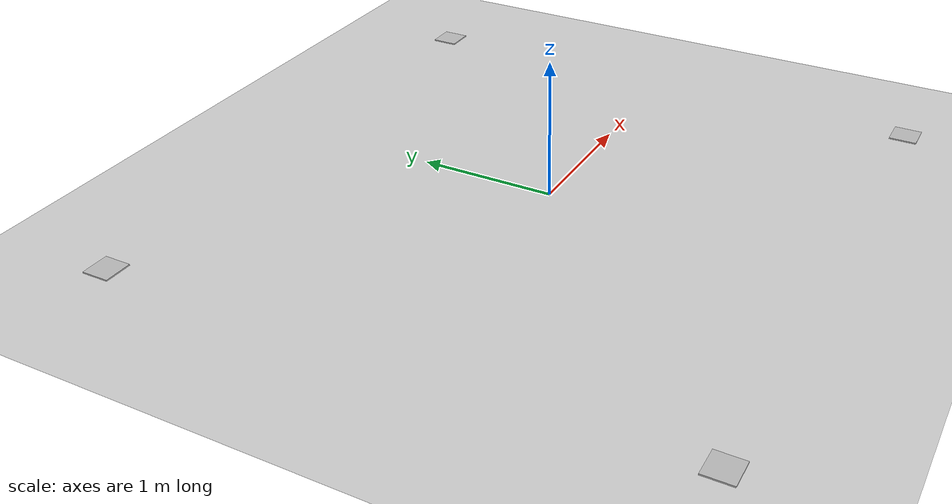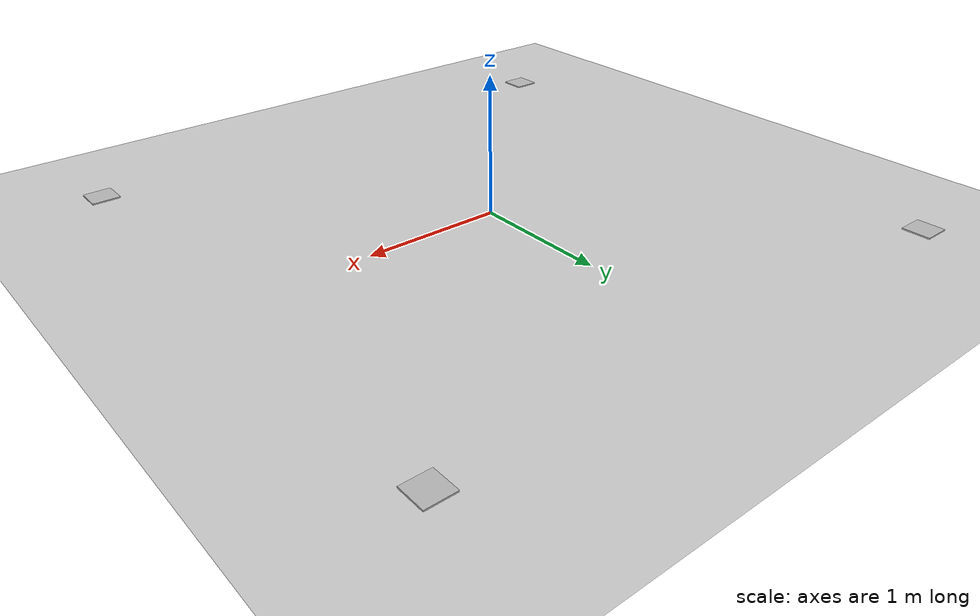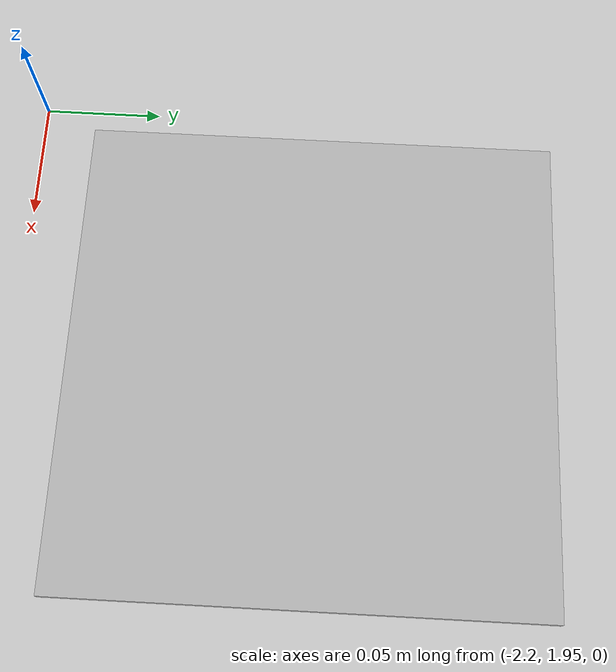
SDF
<sdf version="1.6">
 <world name="default">
  <light name="sun" type="directional">
   <pose>0 0 10 0 -0 0</pose>
   <diffuse>0.8 0.8 0.8 1</diffuse>
   <specular>0.1 0.1 0.1 1</specular>
   <attenuation>
    <range>1000</range>
    <constant>0.9</constant>
    <linear>0.01</linear>
    <quadratic>0.001</quadratic>
   </attenuation>
   <direction>-0.5 0.5 -1</direction>
  </light>
  <model name="ground_plane">
   <static>1</static>
   <link name="link">
    <collision name="collision">
     <geometry><plane><normal>0 0 1</normal><size>100 100</size></plane></geometry>
     <surface><friction><ode><mu>100</mu><mu2>50</mu2></ode></friction></surface>
    </collision>
    <visual name="visual">
     <cast_shadows>0</cast_shadows>
     <geometry><plane><normal>0 0 1</normal><size>100 100</size></plane></geometry>
     <material>
      <script><uri>file://media/materials/scripts/gazebo.material</uri><name>Gazebo/Grey</name></script>
     </material>
    </visual>
   </link>
  </model>
  <gravity>0 0 -9.8</gravity>
  <magnetic_field>6e-06 2.3e-05 -4.2e-05</magnetic_field>
  <atmosphere type="adiabatic"/>
  <physics name="default_physics" default="0" type="ode">
   <max_step_size>0.001</max_step_size>
   <real_time_factor>1</real_time_factor>
   <real_time_update_rate>1000</real_time_update_rate>
  </physics>
  <scene><ambient>0.4 0.4 0.4 1</ambient><background>0.7 0.7 0.7 1</background><shadows>1</shadows></scene>
  <spherical_coordinates>
   <surface_model>EARTH_WGS84</surface_model>
   <latitude_deg>0</latitude_deg>
   <longitude_deg>0</longitude_deg>
   <elevation>0</elevation>
   <heading_deg>0</heading_deg>
  </spherical_coordinates>
  <model name="APtag1">
   <static>1</static>
   <link name="robot_link">
    <collision name="body_collision"><geometry><box><size>0.2 0.2 0.01</size></box></geometry></collision>
    <visual name="body_visual">
     <geometry><box><size>0.2 0.2 0.01</size></box></geometry>
     <material>
      <script>
       <uri>model://APtag1/materials/scripts</uri>
       <uri>model://APtag1/materials/textures</uri>
       <name>vrc/repeated1</name>
      </script>
     </material>
    </visual>
   </link>
   <pose>2 2 0.005 0 -0 0</pose>
  </model>
  <model name="APtag1_0">
   <static>1</static>
   <link name="robot_link">
    <collision name="body_collision"><geometry><box><size>0.2 0.2 0.01</size></box></geometry></collision>
    <visual name="body_visual">
     <geometry><box><size>0.2 0.2 0.01</size></box></geometry>
     <material>
      <script>
       <uri>model://APtag1/materials/scripts</uri>
       <uri>model://APtag1/materials/textures</uri>
       <name>vrc/repeated1</name>
      </script>
     </material>
    </visual>
   </link>
   <pose>2 -2 0.005 0 -0 0</pose>
  </model>
  <model name="APtag2">
   <static>1</static>
   <link name="robot_link">
    <collision name="body_collision"><geometry><box><size>0.2 0.2 0.01</size></box></geometry></collision>
    <visual name="body_visual">
     <geometry><box><size>0.2 0.2 0.01</size></box></geometry>
     <material>
      <script>
       <uri>model://APtag2/materials/scripts</uri>
       <uri>model://APtag2/materials/textures</uri>
       <name>vrc/repeated2</name>
      </script>
     </material>
    </visual>
   </link>
   <pose>-2 -2 0.005 0 -0 0</pose>
  </model>
  <model name="APtag2_0">
   <static>1</static>
   <link name="robot_link">
    <collision name="body_collision"><geometry><box><size>0.2 0.2 0.01</size></box></geometry></collision>
    <visual name="body_visual">
     <geometry><box><size>0.2 0.2 0.01</size></box></geometry>
     <material>
      <script>
       <uri>model://APtag2/materials/scripts</uri>
       <uri>model://APtag2/materials/textures</uri>
       <name>vrc/repeated2</name>
      </script>
     </material>
    </visual>
   </link>
   <pose>-2.08899 2.07302 0 0 -0 0</pose>
  </model>
 </world>
</sdf>
